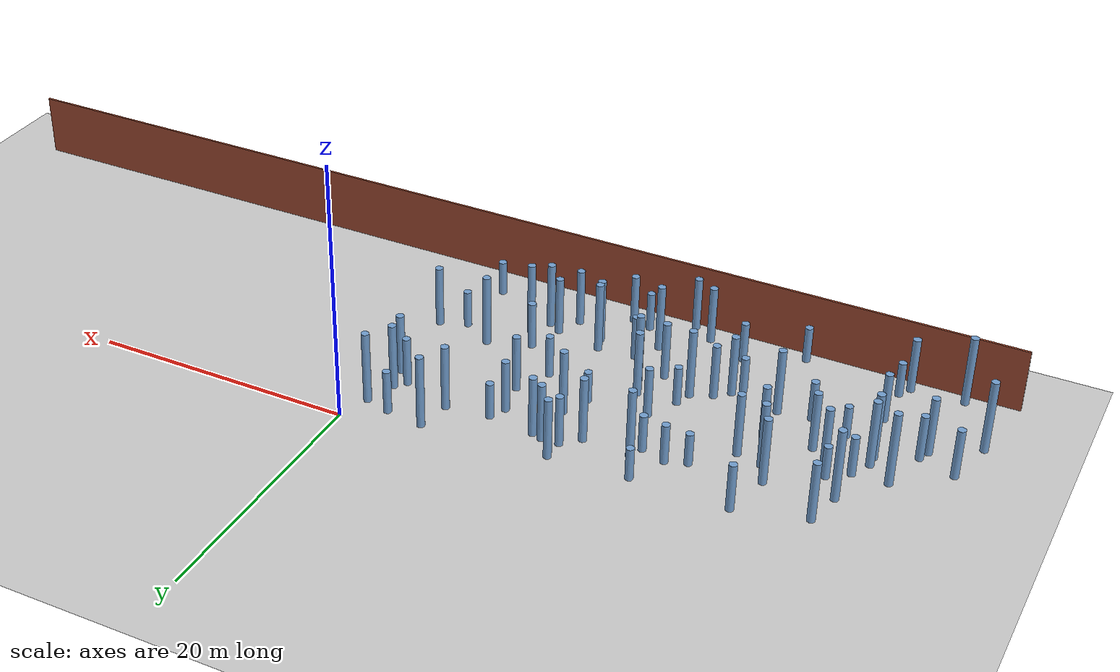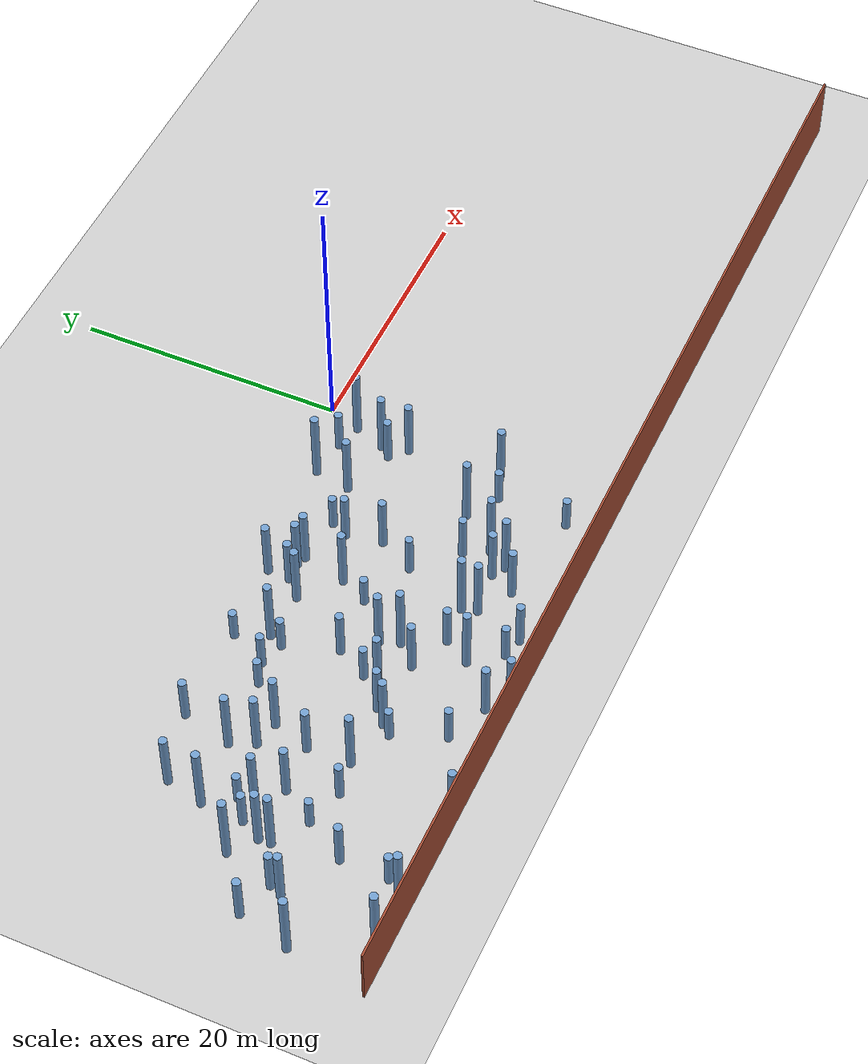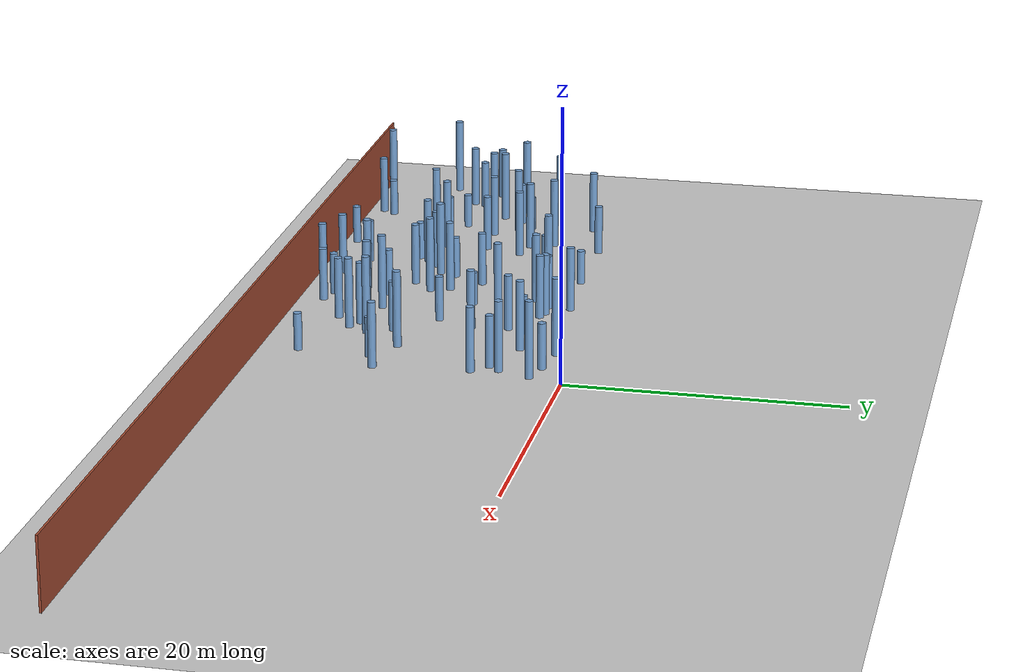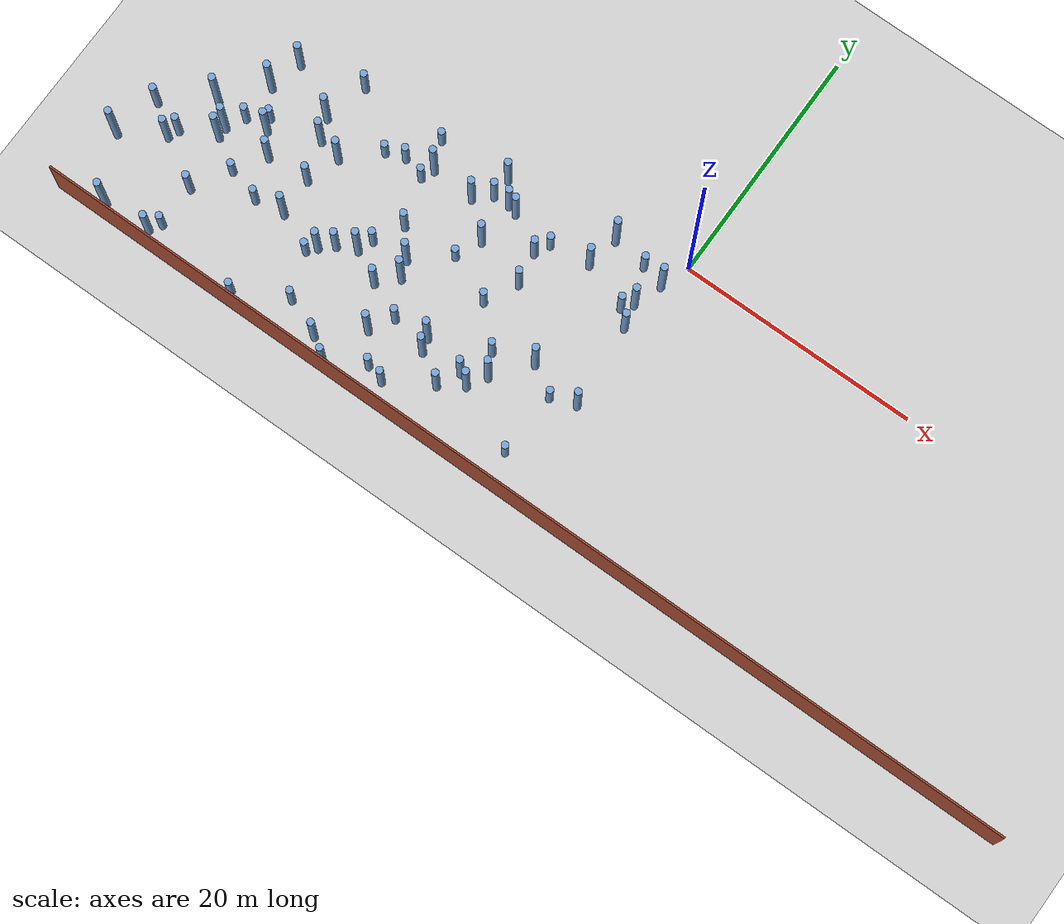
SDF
<sdf version="1.6">
 <world name="random_cylinder_world">
  <model name="ground_plane">
   <static>1</static>
   <link name="link">
    <collision name="collision">
     <geometry><plane><normal>0 0 1</normal><size>95.300000 95.300000</size></plane></geometry>
    </collision>
    <visual name="visual">
     <geometry><plane><normal>0 0 1</normal><size>95.300000 95.300000</size></plane></geometry>
     <material>
      <script><uri>file://media/materials/scripts/gazebo.material</uri><name>Gazebo/Grey</name></script>
     </material>
    </visual>
   </link>
  </model>
  <model name="wall_south">
   <static>1</static>
   <pose>0.000000 -22.575000 2.500000 0 0 0</pose>
   <link name="link">
    <collision name="collision">
     <geometry><box><size>85.300000 0.150000 5.000000</size></box></geometry>
    </collision>
    <visual name="visual">
     <geometry><box><size>85.300000 0.150000 5.000000</size></box></geometry>
     <material>
      <script><uri>file://media/materials/scripts/gazebo.material</uri><name>Gazebo/Bricks</name></script>
     </material>
    </visual>
   </link>
  </model>
  <model name="cylinder_0001">
   <static>1</static>
   <pose>-32.364940 -9.859113 2.478381 0 0 0</pose>
   <link name="link">
    <collision name="collision">
     <geometry><cylinder><radius>0.300000</radius><length>4.956762</length></cylinder></geometry>
    </collision>
    <visual name="visual">
     <geometry><cylinder><radius>0.300000</radius><length>4.956762</length></cylinder></geometry>
     <material><ambient>0.447 0.624 0.812 1</ambient><diffuse>0.447 0.624 0.812 1</diffuse></material>
    </visual>
   </link>
  </model>
  <model name="cylinder_0004">
   <static>1</static>
   <pose>-13.082359 -4.195218 2.401253 0 0 0</pose>
   <link name="link">
    <collision name="collision">
     <geometry><cylinder><radius>0.300000</radius><length>4.802505</length></cylinder></geometry>
    </collision>
    <visual name="visual">
     <geometry><cylinder><radius>0.300000</radius><length>4.802505</length></cylinder></geometry>
     <material><ambient>0.447 0.624 0.812 1</ambient><diffuse>0.447 0.624 0.812 1</diffuse></material>
    </visual>
   </link>
  </model>
  <model name="cylinder_0007">
   <static>1</static>
   <pose>-29.782804 -14.811117 1.611852 0 0 0</pose>
   <link name="link">
    <collision name="collision">
     <geometry><cylinder><radius>0.300000</radius><length>3.223704</length></cylinder></geometry>
    </collision>
    <visual name="visual">
     <geometry><cylinder><radius>0.300000</radius><length>3.223704</length></cylinder></geometry>
     <material><ambient>0.447 0.624 0.812 1</ambient><diffuse>0.447 0.624 0.812 1</diffuse></material>
    </visual>
   </link>
  </model>
  <model name="cylinder_0011">
   <static>1</static>
   <pose>-5.694499 -1.513861 2.902924 0 0 0</pose>
   <link name="link">
    <collision name="collision">
     <geometry><cylinder><radius>0.300000</radius><length>5.805848</length></cylinder></geometry>
    </collision>
    <visual name="visual">
     <geometry><cylinder><radius>0.300000</radius><length>5.805848</length></cylinder></geometry>
     <material><ambient>0.447 0.624 0.812 1</ambient><diffuse>0.447 0.624 0.812 1</diffuse></material>
    </visual>
   </link>
  </model>
  <model name="cylinder_0014">
   <static>1</static>
   <pose>-22.612320 -14.189619 2.198330 0 0 0</pose>
   <link name="link">
    <collision name="collision">
     <geometry><cylinder><radius>0.300000</radius><length>4.396661</length></cylinder></geometry>
    </collision>
    <visual name="visual">
     <geometry><cylinder><radius>0.300000</radius><length>4.396661</length></cylinder></geometry>
     <material><ambient>0.447 0.624 0.812 1</ambient><diffuse>0.447 0.624 0.812 1</diffuse></material>
    </visual>
   </link>
  </model>
  <model name="cylinder_0015">
   <static>1</static>
   <pose>-20.593863 -6.027958 1.477033 0 0 0</pose>
   <link name="link">
    <collision name="collision">
     <geometry><cylinder><radius>0.300000</radius><length>2.954065</length></cylinder></geometry>
    </collision>
    <visual name="visual">
     <geometry><cylinder><radius>0.300000</radius><length>2.954065</length></cylinder></geometry>
     <material><ambient>0.447 0.624 0.812 1</ambient><diffuse>0.447 0.624 0.812 1</diffuse></material>
    </visual>
   </link>
  </model>
  <model name="cylinder_0018">
   <static>1</static>
   <pose>-32.786973 -8.891168 1.316495 0 0 0</pose>
   <link name="link">
    <collision name="collision">
     <geometry><cylinder><radius>0.300000</radius><length>2.632991</length></cylinder></geometry>
    </collision>
    <visual name="visual">
     <geometry><cylinder><radius>0.300000</radius><length>2.632991</length></cylinder></geometry>
     <material><ambient>0.447 0.624 0.812 1</ambient><diffuse>0.447 0.624 0.812 1</diffuse></material>
    </visual>
   </link>
  </model>
  <model name="cylinder_0020">
   <static>1</static>
   <pose>-14.827454 -9.553991 1.263151 0 0 0</pose>
   <link name="link">
    <collision name="collision">
     <geometry><cylinder><radius>0.300000</radius><length>2.526302</length></cylinder></geometry>
    </collision>
    <visual name="visual">
     <geometry><cylinder><radius>0.300000</radius><length>2.526302</length></cylinder></geometry>
     <material><ambient>0.447 0.624 0.812 1</ambient><diffuse>0.447 0.624 0.812 1</diffuse></material>
    </visual>
   </link>
  </model>
  <model name="cylinder_0023">
   <static>1</static>
   <pose>-0.852830 -2.436079 2.868229 0 0 0</pose>
   <link name="link">
    <collision name="collision">
     <geometry><cylinder><radius>0.300000</radius><length>5.736458</length></cylinder></geometry>
    </collision>
    <visual name="visual">
     <geometry><cylinder><radius>0.300000</radius><length>5.736458</length></cylinder></geometry>
     <material><ambient>0.447 0.624 0.812 1</ambient><diffuse>0.447 0.624 0.812 1</diffuse></material>
    </visual>
   </link>
  </model>
  <model name="cylinder_0025">
   <static>1</static>
   <pose>-2.658913 -14.378161 1.494077 0 0 0</pose>
   <link name="link">
    <collision name="collision">
     <geometry><cylinder><radius>0.300000</radius><length>2.988153</length></cylinder></geometry>
    </collision>
    <visual name="visual">
     <geometry><cylinder><radius>0.300000</radius><length>2.988153</length></cylinder></geometry>
     <material><ambient>0.447 0.624 0.812 1</ambient><diffuse>0.447 0.624 0.812 1</diffuse></material>
    </visual>
   </link>
  </model>
  <model name="cylinder_0026">
   <static>1</static>
   <pose>-36.834046 -10.117229 2.944885 0 0 0</pose>
   <link name="link">
    <collision name="collision">
     <geometry><cylinder><radius>0.300000</radius><length>5.889771</length></cylinder></geometry>
    </collision>
    <visual name="visual">
     <geometry><cylinder><radius>0.300000</radius><length>5.889771</length></cylinder></geometry>
     <material><ambient>0.447 0.624 0.812 1</ambient><diffuse>0.447 0.624 0.812 1</diffuse></material>
    </visual>
   </link>
  </model>
  <model name="cylinder_0028">
   <static>1</static>
   <pose>-12.435085 -17.050985 2.607482 0 0 0</pose>
   <link name="link">
    <collision name="collision">
     <geometry><cylinder><radius>0.300000</radius><length>5.214964</length></cylinder></geometry>
    </collision>
    <visual name="visual">
     <geometry><cylinder><radius>0.300000</radius><length>5.214964</length></cylinder></geometry>
     <material><ambient>0.447 0.624 0.812 1</ambient><diffuse>0.447 0.624 0.812 1</diffuse></material>
    </visual>
   </link>
  </model>
  <model name="cylinder_0029">
   <static>1</static>
   <pose>-9.641808 -8.567445 2.251743 0 0 0</pose>
   <link name="link">
    <collision name="collision">
     <geometry><cylinder><radius>0.300000</radius><length>4.503486</length></cylinder></geometry>
    </collision>
    <visual name="visual">
     <geometry><cylinder><radius>0.300000</radius><length>4.503486</length></cylinder></geometry>
     <material><ambient>0.447 0.624 0.812 1</ambient><diffuse>0.447 0.624 0.812 1</diffuse></material>
    </visual>
   </link>
  </model>
  <model name="cylinder_0031">
   <static>1</static>
   <pose>-35.035311 -12.401021 2.701101 0 0 0</pose>
   <link name="link">
    <collision name="collision">
     <geometry><cylinder><radius>0.300000</radius><length>5.402203</length></cylinder></geometry>
    </collision>
    <visual name="visual">
     <geometry><cylinder><radius>0.300000</radius><length>5.402203</length></cylinder></geometry>
     <material><ambient>0.447 0.624 0.812 1</ambient><diffuse>0.447 0.624 0.812 1</diffuse></material>
    </visual>
   </link>
  </model>
  <model name="cylinder_0040">
   <static>1</static>
   <pose>-41.548093 -16.731357 2.895019 0 0 0</pose>
   <link name="link">
    <collision name="collision">
     <geometry><cylinder><radius>0.300000</radius><length>5.790039</length></cylinder></geometry>
    </collision>
    <visual name="visual">
     <geometry><cylinder><radius>0.300000</radius><length>5.790039</length></cylinder></geometry>
     <material><ambient>0.447 0.624 0.812 1</ambient><diffuse>0.447 0.624 0.812 1</diffuse></material>
    </visual>
   </link>
  </model>
  <model name="cylinder_0053">
   <static>1</static>
   <pose>-32.561267 -13.978904 1.288784 0 0 0</pose>
   <link name="link">
    <collision name="collision">
     <geometry><cylinder><radius>0.300000</radius><length>2.577567</length></cylinder></geometry>
    </collision>
    <visual name="visual">
     <geometry><cylinder><radius>0.300000</radius><length>2.577567</length></cylinder></geometry>
     <material><ambient>0.447 0.624 0.812 1</ambient><diffuse>0.447 0.624 0.812 1</diffuse></material>
    </visual>
   </link>
  </model>
  <model name="cylinder_0055">
   <static>1</static>
   <pose>-6.205451 -4.205259 2.608518 0 0 0</pose>
   <link name="link">
    <collision name="collision">
     <geometry><cylinder><radius>0.300000</radius><length>5.217036</length></cylinder></geometry>
    </collision>
    <visual name="visual">
     <geometry><cylinder><radius>0.300000</radius><length>5.217036</length></cylinder></geometry>
     <material><ambient>0.447 0.624 0.812 1</ambient><diffuse>0.447 0.624 0.812 1</diffuse></material>
    </visual>
   </link>
  </model>
  <model name="cylinder_0056">
   <static>1</static>
   <pose>-2.795156 -1.918363 1.721314 0 0 0</pose>
   <link name="link">
    <collision name="collision">
     <geometry><cylinder><radius>0.300000</radius><length>3.442629</length></cylinder></geometry>
    </collision>
    <visual name="visual">
     <geometry><cylinder><radius>0.300000</radius><length>3.442629</length></cylinder></geometry>
     <material><ambient>0.447 0.624 0.812 1</ambient><diffuse>0.447 0.624 0.812 1</diffuse></material>
    </visual>
   </link>
  </model>
  <model name="cylinder_0057">
   <static>1</static>
   <pose>-5.013495 -12.918337 2.854072 0 0 0</pose>
   <link name="link">
    <collision name="collision">
     <geometry><cylinder><radius>0.300000</radius><length>5.708144</length></cylinder></geometry>
    </collision>
    <visual name="visual">
     <geometry><cylinder><radius>0.300000</radius><length>5.708144</length></cylinder></geometry>
     <material><ambient>0.447 0.624 0.812 1</ambient><diffuse>0.447 0.624 0.812 1</diffuse></material>
    </visual>
   </link>
  </model>
  <model name="cylinder_0063">
   <static>1</static>
   <pose>-19.319706 -9.893981 2.019236 0 0 0</pose>
   <link name="link">
    <collision name="collision">
     <geometry><cylinder><radius>0.300000</radius><length>4.038473</length></cylinder></geometry>
    </collision>
    <visual name="visual">
     <geometry><cylinder><radius>0.300000</radius><length>4.038473</length></cylinder></geometry>
     <material><ambient>0.447 0.624 0.812 1</ambient><diffuse>0.447 0.624 0.812 1</diffuse></material>
    </visual>
   </link>
  </model>
  <model name="cylinder_0071">
   <static>1</static>
   <pose>-40.546386 -12.920101 1.980983 0 0 0</pose>
   <link name="link">
    <collision name="collision">
     <geometry><cylinder><radius>0.300000</radius><length>3.961966</length></cylinder></geometry>
    </collision>
    <visual name="visual">
     <geometry><cylinder><radius>0.300000</radius><length>3.961966</length></cylinder></geometry>
     <material><ambient>0.447 0.624 0.812 1</ambient><diffuse>0.447 0.624 0.812 1</diffuse></material>
    </visual>
   </link>
  </model>
  <model name="cylinder_0076">
   <static>1</static>
   <pose>-24.015891 -6.005046 1.296152 0 0 0</pose>
   <link name="link">
    <collision name="collision">
     <geometry><cylinder><radius>0.300000</radius><length>2.592304</length></cylinder></geometry>
    </collision>
    <visual name="visual">
     <geometry><cylinder><radius>0.300000</radius><length>2.592304</length></cylinder></geometry>
     <material><ambient>0.447 0.624 0.812 1</ambient><diffuse>0.447 0.624 0.812 1</diffuse></material>
    </visual>
   </link>
  </model>
  <model name="cylinder_0080">
   <static>1</static>
   <pose>-27.457758 -11.289710 2.123181 0 0 0</pose>
   <link name="link">
    <collision name="collision">
     <geometry><cylinder><radius>0.300000</radius><length>4.246363</length></cylinder></geometry>
    </collision>
    <visual name="visual">
     <geometry><cylinder><radius>0.300000</radius><length>4.246363</length></cylinder></geometry>
     <material><ambient>0.447 0.624 0.812 1</ambient><diffuse>0.447 0.624 0.812 1</diffuse></material>
    </visual>
   </link>
  </model>
  <model name="cylinder_0081">
   <static>1</static>
   <pose>-22.452458 -5.465238 1.580398 0 0 0</pose>
   <link name="link">
    <collision name="collision">
     <geometry><cylinder><radius>0.300000</radius><length>3.160796</length></cylinder></geometry>
    </collision>
    <visual name="visual">
     <geometry><cylinder><radius>0.300000</radius><length>3.160796</length></cylinder></geometry>
     <material><ambient>0.447 0.624 0.812 1</ambient><diffuse>0.447 0.624 0.812 1</diffuse></material>
    </visual>
   </link>
  </model>
  <model name="cylinder_0083">
   <static>1</static>
   <pose>-15.223592 -3.986373 2.027608 0 0 0</pose>
   <link name="link">
    <collision name="collision">
     <geometry><cylinder><radius>0.300000</radius><length>4.055215</length></cylinder></geometry>
    </collision>
    <visual name="visual">
     <geometry><cylinder><radius>0.300000</radius><length>4.055215</length></cylinder></geometry>
     <material><ambient>0.447 0.624 0.812 1</ambient><diffuse>0.447 0.624 0.812 1</diffuse></material>
    </visual>
   </link>
  </model>
  <model name="cylinder_0095">
   <static>1</static>
   <pose>-29.243572 -6.377047 2.673624 0 0 0</pose>
   <link name="link">
    <collision name="collision">
     <geometry><cylinder><radius>0.300000</radius><length>5.347247</length></cylinder></geometry>
    </collision>
    <visual name="visual">
     <geometry><cylinder><radius>0.300000</radius><length>5.347247</length></cylinder></geometry>
     <material><ambient>0.447 0.624 0.812 1</ambient><diffuse>0.447 0.624 0.812 1</diffuse></material>
    </visual>
   </link>
  </model>
  <model name="cylinder_0097">
   <static>1</static>
   <pose>-1.673753 -4.780171 2.635944 0 0 0</pose>
   <link name="link">
    <collision name="collision">
     <geometry><cylinder><radius>0.300000</radius><length>5.271889</length></cylinder></geometry>
    </collision>
    <visual name="visual">
     <geometry><cylinder><radius>0.300000</radius><length>5.271889</length></cylinder></geometry>
     <material><ambient>0.447 0.624 0.812 1</ambient><diffuse>0.447 0.624 0.812 1</diffuse></material>
    </visual>
   </link>
  </model>
  <model name="cylinder_0099">
   <static>1</static>
   <pose>-13.876379 -3.943663 2.312490 0 0 0</pose>
   <link name="link">
    <collision name="collision">
     <geometry><cylinder><radius>0.300000</radius><length>4.624980</length></cylinder></geometry>
    </collision>
    <visual name="visual">
     <geometry><cylinder><radius>0.300000</radius><length>4.624980</length></cylinder></geometry>
     <material><ambient>0.447 0.624 0.812 1</ambient><diffuse>0.447 0.624 0.812 1</diffuse></material>
    </visual>
   </link>
  </model>
  <model name="cylinder_0100">
   <static>1</static>
   <pose>-20.587377 -12.218762 1.569270 0 0 0</pose>
   <link name="link">
    <collision name="collision">
     <geometry><cylinder><radius>0.300000</radius><length>3.138540</length></cylinder></geometry>
    </collision>
    <visual name="visual">
     <geometry><cylinder><radius>0.300000</radius><length>3.138540</length></cylinder></geometry>
     <material><ambient>0.447 0.624 0.812 1</ambient><diffuse>0.447 0.624 0.812 1</diffuse></material>
    </visual>
   </link>
  </model>
  <model name="cylinder_0106">
   <static>1</static>
   <pose>-20.121712 -4.981053 2.771278 0 0 0</pose>
   <link name="link">
    <collision name="collision">
     <geometry><cylinder><radius>0.300000</radius><length>5.542555</length></cylinder></geometry>
    </collision>
    <visual name="visual">
     <geometry><cylinder><radius>0.300000</radius><length>5.542555</length></cylinder></geometry>
     <material><ambient>0.447 0.624 0.812 1</ambient><diffuse>0.447 0.624 0.812 1</diffuse></material>
    </visual>
   </link>
  </model>
  <model name="cylinder_0107">
   <static>1</static>
   <pose>-21.082065 -2.682828 1.292163 0 0 0</pose>
   <link name="link">
    <collision name="collision">
     <geometry><cylinder><radius>0.300000</radius><length>2.584327</length></cylinder></geometry>
    </collision>
    <visual name="visual">
     <geometry><cylinder><radius>0.300000</radius><length>2.584327</length></cylinder></geometry>
     <material><ambient>0.447 0.624 0.812 1</ambient><diffuse>0.447 0.624 0.812 1</diffuse></material>
    </visual>
   </link>
  </model>
  <model name="cylinder_0111">
   <static>1</static>
   <pose>-38.218982 -14.661864 2.332397 0 0 0</pose>
   <link name="link">
    <collision name="collision">
     <geometry><cylinder><radius>0.300000</radius><length>4.664793</length></cylinder></geometry>
    </collision>
    <visual name="visual">
     <geometry><cylinder><radius>0.300000</radius><length>4.664793</length></cylinder></geometry>
     <material><ambient>0.447 0.624 0.812 1</ambient><diffuse>0.447 0.624 0.812 1</diffuse></material>
    </visual>
   </link>
  </model>
  <model name="cylinder_0116">
   <static>1</static>
   <pose>-15.137838 -2.316316 2.419035 0 0 0</pose>
   <link name="link">
    <collision name="collision">
     <geometry><cylinder><radius>0.300000</radius><length>4.838070</length></cylinder></geometry>
    </collision>
    <visual name="visual">
     <geometry><cylinder><radius>0.300000</radius><length>4.838070</length></cylinder></geometry>
     <material><ambient>0.447 0.624 0.812 1</ambient><diffuse>0.447 0.624 0.812 1</diffuse></material>
    </visual>
   </link>
  </model>
  <model name="cylinder_0117">
   <static>1</static>
   <pose>-8.201975 -14.029508 1.882591 0 0 0</pose>
   <link name="link">
    <collision name="collision">
     <geometry><cylinder><radius>0.300000</radius><length>3.765182</length></cylinder></geometry>
    </collision>
    <visual name="visual">
     <geometry><cylinder><radius>0.300000</radius><length>3.765182</length></cylinder></geometry>
     <material><ambient>0.447 0.624 0.812 1</ambient><diffuse>0.447 0.624 0.812 1</diffuse></material>
    </visual>
   </link>
  </model>
  <model name="cylinder_0119">
   <static>1</static>
   <pose>-10.122383 -5.898057 2.085585 0 0 0</pose>
   <link name="link">
    <collision name="collision">
     <geometry><cylinder><radius>0.300000</radius><length>4.171170</length></cylinder></geometry>
    </collision>
    <visual name="visual">
     <geometry><cylinder><radius>0.300000</radius><length>4.171170</length></cylinder></geometry>
     <material><ambient>0.447 0.624 0.812 1</ambient><diffuse>0.447 0.624 0.812 1</diffuse></material>
    </visual>
   </link>
  </model>
  <model name="cylinder_0120">
   <static>1</static>
   <pose>-33.465317 -4.086335 2.375575 0 0 0</pose>
   <link name="link">
    <collision name="collision">
     <geometry><cylinder><radius>0.300000</radius><length>4.751149</length></cylinder></geometry>
    </collision>
    <visual name="visual">
     <geometry><cylinder><radius>0.300000</radius><length>4.751149</length></cylinder></geometry>
     <material><ambient>0.447 0.624 0.812 1</ambient><diffuse>0.447 0.624 0.812 1</diffuse></material>
    </visual>
   </link>
  </model>
  <model name="cylinder_0123">
   <static>1</static>
   <pose>-16.722879 -18.096310 2.691417 0 0 0</pose>
   <link name="link">
    <collision name="collision">
     <geometry><cylinder><radius>0.300000</radius><length>5.382834</length></cylinder></geometry>
    </collision>
    <visual name="visual">
     <geometry><cylinder><radius>0.300000</radius><length>5.382834</length></cylinder></geometry>
     <material><ambient>0.447 0.624 0.812 1</ambient><diffuse>0.447 0.624 0.812 1</diffuse></material>
    </visual>
   </link>
  </model>
  <model name="cylinder_0134">
   <static>1</static>
   <pose>-12.746308 -15.957150 2.810822 0 0 0</pose>
   <link name="link">
    <collision name="collision">
     <geometry><cylinder><radius>0.300000</radius><length>5.621645</length></cylinder></geometry>
    </collision>
    <visual name="visual">
     <geometry><cylinder><radius>0.300000</radius><length>5.621645</length></cylinder></geometry>
     <material><ambient>0.447 0.624 0.812 1</ambient><diffuse>0.447 0.624 0.812 1</diffuse></material>
    </visual>
   </link>
  </model>
  <model name="cylinder_0135">
   <static>1</static>
   <pose>-38.851018 -21.624510 2.796162 0 0 0</pose>
   <link name="link">
    <collision name="collision">
     <geometry><cylinder><radius>0.300000</radius><length>5.592324</length></cylinder></geometry>
    </collision>
    <visual name="visual">
     <geometry><cylinder><radius>0.300000</radius><length>5.592324</length></cylinder></geometry>
     <material><ambient>0.447 0.624 0.812 1</ambient><diffuse>0.447 0.624 0.812 1</diffuse></material>
    </visual>
   </link>
  </model>
  <model name="cylinder_0143">
   <static>1</static>
   <pose>-27.334987 -14.449044 2.652378 0 0 0</pose>
   <link name="link">
    <collision name="collision">
     <geometry><cylinder><radius>0.300000</radius><length>5.304755</length></cylinder></geometry>
    </collision>
    <visual name="visual">
     <geometry><cylinder><radius>0.300000</radius><length>5.304755</length></cylinder></geometry>
     <material><ambient>0.447 0.624 0.812 1</ambient><diffuse>0.447 0.624 0.812 1</diffuse></material>
    </visual>
   </link>
  </model>
  <model name="cylinder_0144">
   <static>1</static>
   <pose>-35.074387 -11.512441 2.692129 0 0 0</pose>
   <link name="link">
    <collision name="collision">
     <geometry><cylinder><radius>0.300000</radius><length>5.384258</length></cylinder></geometry>
    </collision>
    <visual name="visual">
     <geometry><cylinder><radius>0.300000</radius><length>5.384258</length></cylinder></geometry>
     <material><ambient>0.447 0.624 0.812 1</ambient><diffuse>0.447 0.624 0.812 1</diffuse></material>
    </visual>
   </link>
  </model>
  <model name="cylinder_0147">
   <static>1</static>
   <pose>-23.647318 -15.104219 2.456573 0 0 0</pose>
   <link name="link">
    <collision name="collision">
     <geometry><cylinder><radius>0.300000</radius><length>4.913146</length></cylinder></geometry>
    </collision>
    <visual name="visual">
     <geometry><cylinder><radius>0.300000</radius><length>4.913146</length></cylinder></geometry>
     <material><ambient>0.447 0.624 0.812 1</ambient><diffuse>0.447 0.624 0.812 1</diffuse></material>
    </visual>
   </link>
  </model>
  <model name="cylinder_0150">
   <static>1</static>
   <pose>-17.087418 -13.371816 2.857308 0 0 0</pose>
   <link name="link">
    <collision name="collision">
     <geometry><cylinder><radius>0.300000</radius><length>5.714617</length></cylinder></geometry>
    </collision>
    <visual name="visual">
     <geometry><cylinder><radius>0.300000</radius><length>5.714617</length></cylinder></geometry>
     <material><ambient>0.447 0.624 0.812 1</ambient><diffuse>0.447 0.624 0.812 1</diffuse></material>
    </visual>
   </link>
  </model>
  <model name="cylinder_0152">
   <static>1</static>
   <pose>-0.642362 -13.648683 2.440850 0 0 0</pose>
   <link name="link">
    <collision name="collision">
     <geometry><cylinder><radius>0.300000</radius><length>4.881700</length></cylinder></geometry>
    </collision>
    <visual name="visual">
     <geometry><cylinder><radius>0.300000</radius><length>4.881700</length></cylinder></geometry>
     <material><ambient>0.447 0.624 0.812 1</ambient><diffuse>0.447 0.624 0.812 1</diffuse></material>
    </visual>
   </link>
  </model>
  <model name="cylinder_0161">
   <static>1</static>
   <pose>-18.144890 -21.939921 2.169098 0 0 0</pose>
   <link name="link">
    <collision name="collision">
     <geometry><cylinder><radius>0.300000</radius><length>4.338197</length></cylinder></geometry>
    </collision>
    <visual name="visual">
     <geometry><cylinder><radius>0.300000</radius><length>4.338197</length></cylinder></geometry>
     <material><ambient>0.447 0.624 0.812 1</ambient><diffuse>0.447 0.624 0.812 1</diffuse></material>
    </visual>
   </link>
  </model>
  <model name="cylinder_0173">
   <static>1</static>
   <pose>-34.934841 -21.418217 2.200323 0 0 0</pose>
   <link name="link">
    <collision name="collision">
     <geometry><cylinder><radius>0.300000</radius><length>4.400645</length></cylinder></geometry>
    </collision>
    <visual name="visual">
     <geometry><cylinder><radius>0.300000</radius><length>4.400645</length></cylinder></geometry>
     <material><ambient>0.447 0.624 0.812 1</ambient><diffuse>0.447 0.624 0.812 1</diffuse></material>
    </visual>
   </link>
  </model>
  <model name="cylinder_0175">
   <static>1</static>
   <pose>-22.833330 -19.503602 1.616484 0 0 0</pose>
   <link name="link">
    <collision name="collision">
     <geometry><cylinder><radius>0.300000</radius><length>3.232968</length></cylinder></geometry>
    </collision>
    <visual name="visual">
     <geometry><cylinder><radius>0.300000</radius><length>3.232968</length></cylinder></geometry>
     <material><ambient>0.447 0.624 0.812 1</ambient><diffuse>0.447 0.624 0.812 1</diffuse></material>
    </visual>
   </link>
  </model>
  <model name="cylinder_0177">
   <static>1</static>
   <pose>-24.267690 -15.817152 1.437940 0 0 0</pose>
   <link name="link">
    <collision name="collision">
     <geometry><cylinder><radius>0.300000</radius><length>2.875879</length></cylinder></geometry>
    </collision>
    <visual name="visual">
     <geometry><cylinder><radius>0.300000</radius><length>2.875879</length></cylinder></geometry>
     <material><ambient>0.447 0.624 0.812 1</ambient><diffuse>0.447 0.624 0.812 1</diffuse></material>
    </visual>
   </link>
  </model>
  <model name="cylinder_0178">
   <static>1</static>
   <pose>-34.339583 -16.981857 1.988750 0 0 0</pose>
   <link name="link">
    <collision name="collision">
     <geometry><cylinder><radius>0.300000</radius><length>3.977499</length></cylinder></geometry>
    </collision>
    <visual name="visual">
     <geometry><cylinder><radius>0.300000</radius><length>3.977499</length></cylinder></geometry>
     <material><ambient>0.447 0.624 0.812 1</ambient><diffuse>0.447 0.624 0.812 1</diffuse></material>
    </visual>
   </link>
  </model>
  <model name="cylinder_0183">
   <static>1</static>
   <pose>-18.542182 -14.847397 2.320412 0 0 0</pose>
   <link name="link">
    <collision name="collision">
     <geometry><cylinder><radius>0.300000</radius><length>4.640825</length></cylinder></geometry>
    </collision>
    <visual name="visual">
     <geometry><cylinder><radius>0.300000</radius><length>4.640825</length></cylinder></geometry>
     <material><ambient>0.447 0.624 0.812 1</ambient><diffuse>0.447 0.624 0.812 1</diffuse></material>
    </visual>
   </link>
  </model>
  <model name="cylinder_0187">
   <static>1</static>
   <pose>-34.141159 -6.871320 2.877585 0 0 0</pose>
   <link name="link">
    <collision name="collision">
     <geometry><cylinder><radius>0.300000</radius><length>5.755169</length></cylinder></geometry>
    </collision>
    <visual name="visual">
     <geometry><cylinder><radius>0.300000</radius><length>5.755169</length></cylinder></geometry>
     <material><ambient>0.447 0.624 0.812 1</ambient><diffuse>0.447 0.624 0.812 1</diffuse></material>
    </visual>
   </link>
  </model>
  <model name="cylinder_0193">
   <static>1</static>
   <pose>-37.860651 -13.779901 1.828311 0 0 0</pose>
   <link name="link">
    <collision name="collision">
     <geometry><cylinder><radius>0.300000</radius><length>3.656622</length></cylinder></geometry>
    </collision>
    <visual name="visual">
     <geometry><cylinder><radius>0.300000</radius><length>3.656622</length></cylinder></geometry>
     <material><ambient>0.447 0.624 0.812 1</ambient><diffuse>0.447 0.624 0.812 1</diffuse></material>
    </visual>
   </link>
  </model>
  <model name="cylinder_0194">
   <static>1</static>
   <pose>-19.771762 -20.814671 2.310476 0 0 0</pose>
   <link name="link">
    <collision name="collision">
     <geometry><cylinder><radius>0.300000</radius><length>4.620951</length></cylinder></geometry>
    </collision>
    <visual name="visual">
     <geometry><cylinder><radius>0.300000</radius><length>4.620951</length></cylinder></geometry>
     <material><ambient>0.447 0.624 0.812 1</ambient><diffuse>0.447 0.624 0.812 1</diffuse></material>
    </visual>
   </link>
  </model>
  <model name="cylinder_0203">
   <static>1</static>
   <pose>-2.358717 -5.573737 1.947618 0 0 0</pose>
   <link name="link">
    <collision name="collision">
     <geometry><cylinder><radius>0.300000</radius><length>3.895237</length></cylinder></geometry>
    </collision>
    <visual name="visual">
     <geometry><cylinder><radius>0.300000</radius><length>3.895237</length></cylinder></geometry>
     <material><ambient>0.447 0.624 0.812 1</ambient><diffuse>0.447 0.624 0.812 1</diffuse></material>
    </visual>
   </link>
  </model>
  <model name="cylinder_0213">
   <static>1</static>
   <pose>-26.993947 -21.613338 1.442432 0 0 0</pose>
   <link name="link">
    <collision name="collision">
     <geometry><cylinder><radius>0.300000</radius><length>2.884864</length></cylinder></geometry>
    </collision>
    <visual name="visual">
     <geometry><cylinder><radius>0.300000</radius><length>2.884864</length></cylinder></geometry>
     <material><ambient>0.447 0.624 0.812 1</ambient><diffuse>0.447 0.624 0.812 1</diffuse></material>
    </visual>
   </link>
  </model>
  <model name="cylinder_0222">
   <static>1</static>
   <pose>-15.081336 -20.255023 1.565703 0 0 0</pose>
   <link name="link">
    <collision name="collision">
     <geometry><cylinder><radius>0.300000</radius><length>3.131407</length></cylinder></geometry>
    </collision>
    <visual name="visual">
     <geometry><cylinder><radius>0.300000</radius><length>3.131407</length></cylinder></geometry>
     <material><ambient>0.447 0.624 0.812 1</ambient><diffuse>0.447 0.624 0.812 1</diffuse></material>
    </visual>
   </link>
  </model>
  <model name="cylinder_0223">
   <static>1</static>
   <pose>-30.989093 -11.508820 2.371211 0 0 0</pose>
   <link name="link">
    <collision name="collision">
     <geometry><cylinder><radius>0.300000</radius><length>4.742421</length></cylinder></geometry>
    </collision>
    <visual name="visual">
     <geometry><cylinder><radius>0.300000</radius><length>4.742421</length></cylinder></geometry>
     <material><ambient>0.447 0.624 0.812 1</ambient><diffuse>0.447 0.624 0.812 1</diffuse></material>
    </visual>
   </link>
  </model>
  <model name="cylinder_0233">
   <static>1</static>
   <pose>-9.524679 -4.653514 1.450116 0 0 0</pose>
   <link name="link">
    <collision name="collision">
     <geometry><cylinder><radius>0.300000</radius><length>2.900232</length></cylinder></geometry>
    </collision>
    <visual name="visual">
     <geometry><cylinder><radius>0.300000</radius><length>2.900232</length></cylinder></geometry>
     <material><ambient>0.447 0.624 0.812 1</ambient><diffuse>0.447 0.624 0.812 1</diffuse></material>
    </visual>
   </link>
  </model>
  <model name="cylinder_0234">
   <static>1</static>
   <pose>-28.311365 -2.705370 1.874743 0 0 0</pose>
   <link name="link">
    <collision name="collision">
     <geometry><cylinder><radius>0.300000</radius><length>3.749485</length></cylinder></geometry>
    </collision>
    <visual name="visual">
     <geometry><cylinder><radius>0.300000</radius><length>3.749485</length></cylinder></geometry>
     <material><ambient>0.447 0.624 0.812 1</ambient><diffuse>0.447 0.624 0.812 1</diffuse></material>
    </visual>
   </link>
  </model>
  <model name="cylinder_0238">
   <static>1</static>
   <pose>-13.868862 -7.489416 2.613041 0 0 0</pose>
   <link name="link">
    <collision name="collision">
     <geometry><cylinder><radius>0.300000</radius><length>5.226082</length></cylinder></geometry>
    </collision>
    <visual name="visual">
     <geometry><cylinder><radius>0.300000</radius><length>5.226082</length></cylinder></geometry>
     <material><ambient>0.447 0.624 0.812 1</ambient><diffuse>0.447 0.624 0.812 1</diffuse></material>
    </visual>
   </link>
  </model>
  <model name="cylinder_0239">
   <static>1</static>
   <pose>-1.221598 -6.715211 2.423973 0 0 0</pose>
   <link name="link">
    <collision name="collision">
     <geometry><cylinder><radius>0.300000</radius><length>4.847947</length></cylinder></geometry>
    </collision>
    <visual name="visual">
     <geometry><cylinder><radius>0.300000</radius><length>4.847947</length></cylinder></geometry>
     <material><ambient>0.447 0.624 0.812 1</ambient><diffuse>0.447 0.624 0.812 1</diffuse></material>
    </visual>
   </link>
  </model>
  <model name="cylinder_0246">
   <static>1</static>
   <pose>-34.264512 -9.985342 1.588239 0 0 0</pose>
   <link name="link">
    <collision name="collision">
     <geometry><cylinder><radius>0.300000</radius><length>3.176478</length></cylinder></geometry>
    </collision>
    <visual name="visual">
     <geometry><cylinder><radius>0.300000</radius><length>3.176478</length></cylinder></geometry>
     <material><ambient>0.447 0.624 0.812 1</ambient><diffuse>0.447 0.624 0.812 1</diffuse></material>
    </visual>
   </link>
  </model>
  <model name="cylinder_0250">
   <static>1</static>
   <pose>-28.495289 -8.115784 2.595000 0 0 0</pose>
   <link name="link">
    <collision name="collision">
     <geometry><cylinder><radius>0.300000</radius><length>5.190000</length></cylinder></geometry>
    </collision>
    <visual name="visual">
     <geometry><cylinder><radius>0.300000</radius><length>5.190000</length></cylinder></geometry>
     <material><ambient>0.447 0.624 0.812 1</ambient><diffuse>0.447 0.624 0.812 1</diffuse></material>
    </visual>
   </link>
  </model>
  <model name="cylinder_0251">
   <static>1</static>
   <pose>-26.575376 -8.548912 2.543625 0 0 0</pose>
   <link name="link">
    <collision name="collision">
     <geometry><cylinder><radius>0.300000</radius><length>5.087251</length></cylinder></geometry>
    </collision>
    <visual name="visual">
     <geometry><cylinder><radius>0.300000</radius><length>5.087251</length></cylinder></geometry>
     <material><ambient>0.447 0.624 0.812 1</ambient><diffuse>0.447 0.624 0.812 1</diffuse></material>
    </visual>
   </link>
  </model>
  <model name="cylinder_0258">
   <static>1</static>
   <pose>-21.045785 -13.494466 2.788262 0 0 0</pose>
   <link name="link">
    <collision name="collision">
     <geometry><cylinder><radius>0.300000</radius><length>5.576525</length></cylinder></geometry>
    </collision>
    <visual name="visual">
     <geometry><cylinder><radius>0.300000</radius><length>5.576525</length></cylinder></geometry>
     <material><ambient>0.447 0.624 0.812 1</ambient><diffuse>0.447 0.624 0.812 1</diffuse></material>
    </visual>
   </link>
  </model>
  <model name="cylinder_0261">
   <static>1</static>
   <pose>-10.998244 -11.225954 1.692980 0 0 0</pose>
   <link name="link">
    <collision name="collision">
     <geometry><cylinder><radius>0.300000</radius><length>3.385960</length></cylinder></geometry>
    </collision>
    <visual name="visual">
     <geometry><cylinder><radius>0.300000</radius><length>3.385960</length></cylinder></geometry>
     <material><ambient>0.447 0.624 0.812 1</ambient><diffuse>0.447 0.624 0.812 1</diffuse></material>
    </visual>
   </link>
  </model>
  <model name="cylinder_0265">
   <static>1</static>
   <pose>-34.356959 -20.480406 1.397018 0 0 0</pose>
   <link name="link">
    <collision name="collision">
     <geometry><cylinder><radius>0.300000</radius><length>2.794035</length></cylinder></geometry>
    </collision>
    <visual name="visual">
     <geometry><cylinder><radius>0.300000</radius><length>2.794035</length></cylinder></geometry>
     <material><ambient>0.447 0.624 0.812 1</ambient><diffuse>0.447 0.624 0.812 1</diffuse></material>
    </visual>
   </link>
  </model>
  <model name="cylinder_0266">
   <static>1</static>
   <pose>-15.612483 -16.175343 1.776346 0 0 0</pose>
   <link name="link">
    <collision name="collision">
     <geometry><cylinder><radius>0.300000</radius><length>3.552692</length></cylinder></geometry>
    </collision>
    <visual name="visual">
     <geometry><cylinder><radius>0.300000</radius><length>3.552692</length></cylinder></geometry>
     <material><ambient>0.447 0.624 0.812 1</ambient><diffuse>0.447 0.624 0.812 1</diffuse></material>
    </visual>
   </link>
  </model>
  <model name="cylinder_0268">
   <static>1</static>
   <pose>-2.937741 -19.669198 1.392652 0 0 0</pose>
   <link name="link">
    <collision name="collision">
     <geometry><cylinder><radius>0.300000</radius><length>2.785304</length></cylinder></geometry>
    </collision>
    <visual name="visual">
     <geometry><cylinder><radius>0.300000</radius><length>2.785304</length></cylinder></geometry>
     <material><ambient>0.447 0.624 0.812 1</ambient><diffuse>0.447 0.624 0.812 1</diffuse></material>
    </visual>
   </link>
  </model>
  <model name="cylinder_0269">
   <static>1</static>
   <pose>-9.172317 -16.705110 2.337504 0 0 0</pose>
   <link name="link">
    <collision name="collision">
     <geometry><cylinder><radius>0.300000</radius><length>4.675009</length></cylinder></geometry>
    </collision>
    <visual name="visual">
     <geometry><cylinder><radius>0.300000</radius><length>4.675009</length></cylinder></geometry>
     <material><ambient>0.447 0.624 0.812 1</ambient><diffuse>0.447 0.624 0.812 1</diffuse></material>
    </visual>
   </link>
  </model>
  <model name="cylinder_0279">
   <static>1</static>
   <pose>-13.599761 -20.680535 1.979559 0 0 0</pose>
   <link name="link">
    <collision name="collision">
     <geometry><cylinder><radius>0.300000</radius><length>3.959119</length></cylinder></geometry>
    </collision>
    <visual name="visual">
     <geometry><cylinder><radius>0.300000</radius><length>3.959119</length></cylinder></geometry>
     <material><ambient>0.447 0.624 0.812 1</ambient><diffuse>0.447 0.624 0.812 1</diffuse></material>
    </visual>
   </link>
  </model>
  <model name="cylinder_0281">
   <static>1</static>
   <pose>-10.050639 -18.561778 2.300909 0 0 0</pose>
   <link name="link">
    <collision name="collision">
     <geometry><cylinder><radius>0.300000</radius><length>4.601818</length></cylinder></geometry>
    </collision>
    <visual name="visual">
     <geometry><cylinder><radius>0.300000</radius><length>4.601818</length></cylinder></geometry>
     <material><ambient>0.447 0.624 0.812 1</ambient><diffuse>0.447 0.624 0.812 1</diffuse></material>
    </visual>
   </link>
  </model>
  <model name="cylinder_0283">
   <static>1</static>
   <pose>-8.202159 -17.295882 2.650539 0 0 0</pose>
   <link name="link">
    <collision name="collision">
     <geometry><cylinder><radius>0.300000</radius><length>5.301079</length></cylinder></geometry>
    </collision>
    <visual name="visual">
     <geometry><cylinder><radius>0.300000</radius><length>5.301079</length></cylinder></geometry>
     <material><ambient>0.447 0.624 0.812 1</ambient><diffuse>0.447 0.624 0.812 1</diffuse></material>
    </visual>
   </link>
  </model>
  <model name="cylinder_0288">
   <static>1</static>
   <pose>-17.627047 -11.965859 2.646866 0 0 0</pose>
   <link name="link">
    <collision name="collision">
     <geometry><cylinder><radius>0.300000</radius><length>5.293731</length></cylinder></geometry>
    </collision>
    <visual name="visual">
     <geometry><cylinder><radius>0.300000</radius><length>5.293731</length></cylinder></geometry>
     <material><ambient>0.447 0.624 0.812 1</ambient><diffuse>0.447 0.624 0.812 1</diffuse></material>
    </visual>
   </link>
  </model>
  <model name="cylinder_0292">
   <static>1</static>
   <pose>-16.474204 -5.173983 2.611928 0 0 0</pose>
   <link name="link">
    <collision name="collision">
     <geometry><cylinder><radius>0.300000</radius><length>5.223855</length></cylinder></geometry>
    </collision>
    <visual name="visual">
     <geometry><cylinder><radius>0.300000</radius><length>5.223855</length></cylinder></geometry>
     <material><ambient>0.447 0.624 0.812 1</ambient><diffuse>0.447 0.624 0.812 1</diffuse></material>
    </visual>
   </link>
  </model>
  <model name="cylinder_0295">
   <static>1</static>
   <pose>-7.294830 -15.771462 2.915999 0 0 0</pose>
   <link name="link">
    <collision name="collision">
     <geometry><cylinder><radius>0.300000</radius><length>5.831998</length></cylinder></geometry>
    </collision>
    <visual name="visual">
     <geometry><cylinder><radius>0.300000</radius><length>5.831998</length></cylinder></geometry>
     <material><ambient>0.447 0.624 0.812 1</ambient><diffuse>0.447 0.624 0.812 1</diffuse></material>
    </visual>
   </link>
  </model>
 </world>
</sdf>
